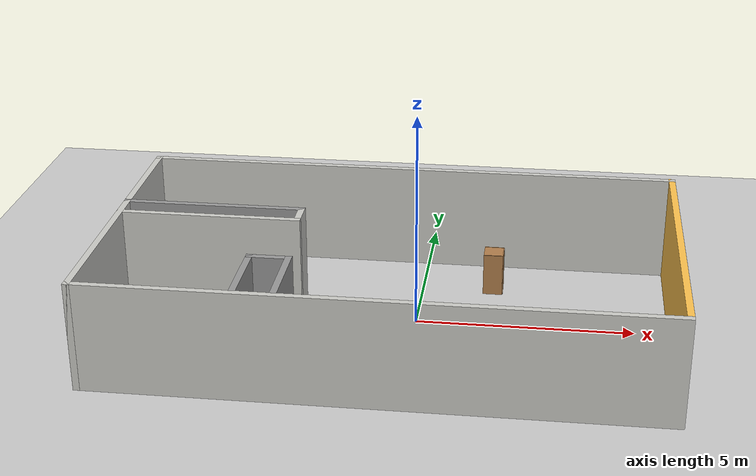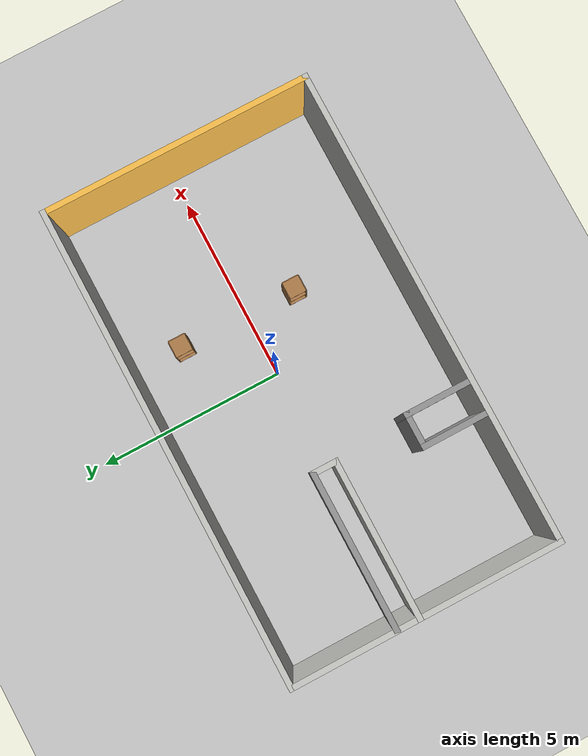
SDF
<sdf version="1.6">
 <world name="default">
  <light name="sun" type="directional">
   <pose>0 0 10 0 -0 0</pose>
   <diffuse>0.8 0.8 0.8 1</diffuse>
   <specular>0.2 0.2 0.2 1</specular>
   <attenuation>
    <range>1000</range>
    <constant>0.9</constant>
    <linear>0.01</linear>
    <quadratic>0.001</quadratic>
   </attenuation>
   <direction>-0.5 0.1 -0.9</direction>
  </light>
  <model name="ground_plane">
   <static>1</static>
   <link name="link">
    <collision name="collision">
     <geometry><plane><normal>0 0 1</normal><size>100 100</size></plane></geometry>
     <surface>
      <contact><collide_bitmask>65535</collide_bitmask></contact>
      <friction><ode><mu>100</mu><mu2>50</mu2></ode></friction>
     </surface>
    </collision>
    <visual name="visual">
     <cast_shadows>0</cast_shadows>
     <geometry><plane><normal>0 0 1</normal><size>100 100</size></plane></geometry>
     <material>
      <script><uri>file://media/materials/scripts/gazebo.material</uri><name>Gazebo/Grey</name></script>
     </material>
    </visual>
   </link>
  </model>
  <gravity>0 0 -9.8</gravity>
  <magnetic_field>6e-06 2.3e-05 -4.2e-05</magnetic_field>
  <atmosphere type="adiabatic"/>
  <physics name="default_physics" default="0" type="ode">
   <max_step_size>0.001</max_step_size>
   <real_time_factor>1</real_time_factor>
   <real_time_update_rate>1000</real_time_update_rate>
  </physics>
  <scene><ambient>0.4 0.4 0.4 1</ambient><background>0.7 0.7 0.7 1</background><shadows>1</shadows></scene>
  <spherical_coordinates>
   <surface_model>EARTH_WGS84</surface_model>
   <latitude_deg>0</latitude_deg>
   <longitude_deg>0</longitude_deg>
   <elevation>0</elevation>
   <heading_deg>0</heading_deg>
  </spherical_coordinates>
  <model name="jannat2_area">
   <pose>-0.489466 -0.350977 0 0 -0 0</pose>
   <link name="Wall_1">
    <collision name="Wall_1_Collision">
     <geometry><box><size>12.75 0.15 2.5</size></box></geometry>
     <pose>0 0 1.25 0 -0 0</pose>
    </collision>
    <visual name="Wall_1_Visual">
     <pose>0 0 1.25 0 -0 0</pose>
     <geometry><box><size>12.75 0.15 2.5</size></box></geometry>
     <material>
      <script><uri>file://media/materials/scripts/gazebo.material</uri><name>Gazebo/CeilingTiled</name></script>
      <ambient>1 0.764706 0.305882 1</ambient>
     </material>
     <meta><layer>0</layer></meta>
    </visual>
    <pose>-0 -3.55 0 0 -0 0</pose>
   </link>
   <link name="Wall_12">
    <collision name="Wall_12_Collision">
     <geometry><box><size>4.25 0.15 2.5</size></box></geometry>
     <pose>0 0 1.25 0 -0 0</pose>
    </collision>
    <visual name="Wall_12_Visual">
     <pose>0 0 1.25 0 -0 0</pose>
     <geometry><box><size>4.25 0.15 2.5</size></box></geometry>
     <material>
      <script><uri>file://media/materials/scripts/gazebo.material</uri><name>Gazebo/Grey</name></script>
      <ambient>1 1 1 1</ambient>
     </material>
     <meta><layer>0</layer></meta>
    </visual>
    <pose>-4.25 0.787536 0 0 -0 0</pose>
   </link>
   <link name="Wall_13">
    <collision name="Wall_13_Collision">
     <geometry><box><size>0.75 0.15 2.5</size></box></geometry>
     <pose>0 0 1.25 0 -0 0</pose>
    </collision>
    <visual name="Wall_13_Visual">
     <pose>0 0 1.25 0 -0 0</pose>
     <geometry><box><size>0.75 0.15 2.5</size></box></geometry>
     <material>
      <script><uri>file://media/materials/scripts/gazebo.material</uri><name>Gazebo/CeilingTiled</name></script>
      <ambient>1 1 1 1</ambient>
     </material>
     <meta><layer>0</layer></meta>
    </visual>
    <pose>-2.2 0.487536 0 0 -0 -1.5708</pose>
   </link>
   <link name="Wall_14">
    <collision name="Wall_14_Collision">
     <geometry><box><size>4.25 0.15 2.5</size></box></geometry>
     <pose>0 0 1.25 0 -0 0</pose>
    </collision>
    <visual name="Wall_14_Visual">
     <pose>0 0 1.25 0 -0 0</pose>
     <geometry><box><size>4.25 0.15 2.5</size></box></geometry>
     <material>
      <script><uri>file://media/materials/scripts/gazebo.material</uri><name>Gazebo/CeilingTiled</name></script>
      <ambient>1 1 1 1</ambient>
     </material>
     <meta><layer>0</layer></meta>
    </visual>
    <pose>-4.25 0.187536 0 0 -0 3.14159</pose>
   </link>
   <link name="Wall_2">
    <collision name="Wall_2_Collision">
     <geometry><box><size>7.25 0.15 2.5</size></box></geometry>
     <pose>0 0 1.25 0 -0 0</pose>
    </collision>
    <visual name="Wall_2_Visual">
     <pose>0 0 1.25 0 -0 0</pose>
     <geometry><box><size>7.25 0.15 2.5</size></box></geometry>
     <material>
      <script><uri>file://media/materials/scripts/gazebo.material</uri><name>Gazebo/Grey</name></script>
      <ambient>1 0.764706 0.305882 1</ambient>
     </material>
     <meta><layer>0</layer></meta>
    </visual>
    <pose>6.3 0 0 0 -0 1.5708</pose>
   </link>
   <link name="Wall_21">
    <collision name="Wall_21_Collision">
     <geometry><box><size>1.75 0.15 2.5</size></box></geometry>
     <pose>0 0 1.25 0 -0 0</pose>
    </collision>
    <visual name="Wall_21_Visual">
     <pose>0 0 1.25 0 -0 0</pose>
     <geometry><box><size>1.75 0.15 2.5</size></box></geometry>
     <material>
      <script><uri>file://media/materials/scripts/gazebo.material</uri><name>Gazebo/Grey</name></script>
      <ambient>1 1 1 1</ambient>
     </material>
     <meta><layer>0</layer></meta>
    </visual>
    <pose>-2.01493 -2.61008 0 0 -0 1.5708</pose>
   </link>
   <link name="Wall_22">
    <collision name="Wall_22_Collision">
     <geometry><box><size>1 0.15 2.5</size></box></geometry>
     <pose>0 0 1.25 0 -0 0</pose>
    </collision>
    <visual name="Wall_22_Visual">
     <pose>0 0 1.25 0 -0 0</pose>
     <geometry><box><size>1 0.15 2.5</size></box></geometry>
     <material>
      <script><uri>file://media/materials/scripts/gazebo.material</uri><name>Gazebo/Grey</name></script>
      <ambient>1 1 1 1</ambient>
     </material>
     <meta><layer>0</layer></meta>
    </visual>
    <pose>-2.43994 -1.81008 0 0 -0 3.14159</pose>
   </link>
   <link name="Wall_23">
    <collision name="Wall_23_Collision">
     <geometry><box><size>1.75 0.15 2.5</size></box></geometry>
     <pose>0 0 1.25 0 -0 0</pose>
    </collision>
    <visual name="Wall_23_Visual">
     <pose>0 0 1.25 0 -0 0</pose>
     <geometry><box><size>1.75 0.15 2.5</size></box></geometry>
     <material>
      <script><uri>file://media/materials/scripts/gazebo.material</uri><name>Gazebo/Grey</name></script>
      <ambient>1 1 1 1</ambient>
     </material>
     <meta><layer>0</layer></meta>
    </visual>
    <pose>-2.86494 -2.61008 0 0 -0 -1.5708</pose>
   </link>
   <link name="Wall_3">
    <collision name="Wall_3_Collision">
     <geometry><box><size>12.75 0.15 2.5</size></box></geometry>
     <pose>0 0 1.25 0 -0 0</pose>
    </collision>
    <visual name="Wall_3_Visual">
     <pose>0 0 1.25 0 -0 0</pose>
     <geometry><box><size>12.75 0.15 2.5</size></box></geometry>
     <material>
      <script><uri>file://media/materials/scripts/gazebo.material</uri><name>Gazebo/CeilingTiled</name></script>
      <ambient>1 0.764706 0.305882 1</ambient>
     </material>
     <meta><layer>0</layer></meta>
    </visual>
    <pose>-0 3.55 0 0 -0 3.14159</pose>
   </link>
   <link name="Wall_4">
    <collision name="Wall_4_Collision">
     <geometry><box><size>7.25 0.15 2.5</size></box></geometry>
     <pose>0 0 1.25 0 -0 0</pose>
    </collision>
    <visual name="Wall_4_Visual">
     <pose>0 0 1.25 0 -0 0</pose>
     <geometry><box><size>7.25 0.15 2.5</size></box></geometry>
     <material>
      <script><uri>file://media/materials/scripts/gazebo.material</uri><name>Gazebo/CeilingTiled</name></script>
      <ambient>1 0.764706 0.305882 1</ambient>
     </material>
     <meta><layer>0</layer></meta>
    </visual>
    <pose>-6.3 0 0 0 -0 -1.5708</pose>
   </link>
   <static>1</static>
  </model>
  <model name="cabinet">
   <static>1</static>
   <link name="cabinet_bottom_plate">
    <inertial>
     <pose>0 0 -1 0 -0 0</pose>
     <inertia><ixx>2.05</ixx><ixy>0</ixy><ixz>0</ixz><iyy>2.05</iyy><iyz>0</iyz><izz>2.05</izz></inertia>
     <mass>25</mass>
    </inertial>
    <collision name="cabinet_bottom_plate_geom">
     <pose>0 0 0.01 0 -0 0</pose>
     <geometry><box><size>0.45 0.45 0.02</size></box></geometry>
    </collision>
    <visual name="cabinet_bottom_plate_geom_visual">
     <pose>0 0 0.01 0 -0 0</pose>
     <geometry><box><size>0.45 0.45 0.02</size></box></geometry>
     <material>
      <script><uri>file://media/materials/scripts/gazebo.material</uri><name>Gazebo/Wood</name></script>
     </material>
    </visual>
    <collision name="cabinet_bottom_plate_geom_cabinet_back_plate">
     <pose>0.235 0 0.51 0 -0 0</pose>
     <geometry><box><size>0.02 0.45 1.02</size></box></geometry>
    </collision>
    <visual name="cabinet_bottom_plate_geom_cabinet_back_plate_visual">
     <pose>0.235 0 0.51 0 -0 0</pose>
     <geometry><box><size>0.02 0.45 1.02</size></box></geometry>
     <material>
      <script><uri>file://media/materials/scripts/gazebo.material</uri><name>Gazebo/Wood</name></script>
     </material>
    </visual>
    <collision name="cabinet_bottom_plate_geom_cabinet_left_plate">
     <pose>0 0.235 0.51 0 -0 0</pose>
     <geometry><box><size>0.45 0.02 1.02</size></box></geometry>
    </collision>
    <visual name="cabinet_bottom_plate_geom_cabinet_left_plate_visual">
     <pose>0 0.235 0.51 0 -0 0</pose>
     <geometry><box><size>0.45 0.02 1.02</size></box></geometry>
     <material>
      <script><uri>file://media/materials/scripts/gazebo.material</uri><name>Gazebo/Wood</name></script>
     </material>
    </visual>
    <collision name="cabinet_bottom_plate_geom_cabinet_middle_plate">
     <pose>0 0 0.51 0 -0 0</pose>
     <geometry><box><size>0.45 0.45 0.02</size></box></geometry>
    </collision>
    <visual name="cabinet_bottom_plate_geom_cabinet_middle_plate_visual">
     <pose>0 0 0.51 0 -0 0</pose>
     <geometry><box><size>0.45 0.45 0.02</size></box></geometry>
     <material>
      <script><uri>file://media/materials/scripts/gazebo.material</uri><name>Gazebo/Wood</name></script>
     </material>
    </visual>
    <collision name="cabinet_bottom_plate_geom_cabinet_right_plate">
     <pose>0 -0.235 0.51 0 -0 0</pose>
     <geometry><box><size>0.45 0.02 1.02</size></box></geometry>
    </collision>
    <visual name="cabinet_bottom_plate_geom_cabinet_right_plate_visual">
     <pose>0 -0.235 0.51 0 -0 0</pose>
     <geometry><box><size>0.45 0.02 1.02</size></box></geometry>
     <material>
      <script><uri>file://media/materials/scripts/gazebo.material</uri><name>Gazebo/Wood</name></script>
     </material>
    </visual>
    <collision name="cabinet_bottom_plate_geom_cabinet_top_plate">
     <pose>0 0 1.01 0 -0 0</pose>
     <geometry><box><size>0.45 0.45 0.02</size></box></geometry>
    </collision>
    <visual name="cabinet_bottom_plate_geom_cabinet_top_plate_visual">
     <pose>0 0 1.01 0 -0 0</pose>
     <geometry><box><size>0.45 0.45 0.02</size></box></geometry>
     <material>
      <script><uri>file://media/materials/scripts/gazebo.material</uri><name>Gazebo/Wood</name></script>
     </material>
    </visual>
   </link>
   <pose>1.66921 1.83813 0 0 -0 0</pose>
  </model>
  <model name="cabinet_0">
   <static>1</static>
   <link name="cabinet_bottom_plate">
    <inertial>
     <pose>0 0 -1 0 -0 0</pose>
     <inertia><ixx>2.05</ixx><ixy>0</ixy><ixz>0</ixz><iyy>2.05</iyy><iyz>0</iyz><izz>2.05</izz></inertia>
     <mass>25</mass>
    </inertial>
    <collision name="cabinet_bottom_plate_geom">
     <pose>0 0 0.01 0 -0 0</pose>
     <geometry><box><size>0.45 0.45 0.02</size></box></geometry>
    </collision>
    <visual name="cabinet_bottom_plate_geom_visual">
     <pose>0 0 0.01 0 -0 0</pose>
     <geometry><box><size>0.45 0.45 0.02</size></box></geometry>
     <material>
      <script><uri>file://media/materials/scripts/gazebo.material</uri><name>Gazebo/Wood</name></script>
     </material>
    </visual>
    <collision name="cabinet_bottom_plate_geom_cabinet_back_plate">
     <pose>0.235 0 0.51 0 -0 0</pose>
     <geometry><box><size>0.02 0.45 1.02</size></box></geometry>
    </collision>
    <visual name="cabinet_bottom_plate_geom_cabinet_back_plate_visual">
     <pose>0.235 0 0.51 0 -0 0</pose>
     <geometry><box><size>0.02 0.45 1.02</size></box></geometry>
     <material>
      <script><uri>file://media/materials/scripts/gazebo.material</uri><name>Gazebo/Wood</name></script>
     </material>
    </visual>
    <collision name="cabinet_bottom_plate_geom_cabinet_left_plate">
     <pose>0 0.235 0.51 0 -0 0</pose>
     <geometry><box><size>0.45 0.02 1.02</size></box></geometry>
    </collision>
    <visual name="cabinet_bottom_plate_geom_cabinet_left_plate_visual">
     <pose>0 0.235 0.51 0 -0 0</pose>
     <geometry><box><size>0.45 0.02 1.02</size></box></geometry>
     <material>
      <script><uri>file://media/materials/scripts/gazebo.material</uri><name>Gazebo/Wood</name></script>
     </material>
    </visual>
    <collision name="cabinet_bottom_plate_geom_cabinet_middle_plate">
     <pose>0 0 0.51 0 -0 0</pose>
     <geometry><box><size>0.45 0.45 0.02</size></box></geometry>
    </collision>
    <visual name="cabinet_bottom_plate_geom_cabinet_middle_plate_visual">
     <pose>0 0 0.51 0 -0 0</pose>
     <geometry><box><size>0.45 0.45 0.02</size></box></geometry>
     <material>
      <script><uri>file://media/materials/scripts/gazebo.material</uri><name>Gazebo/Wood</name></script>
     </material>
    </visual>
    <collision name="cabinet_bottom_plate_geom_cabinet_right_plate">
     <pose>0 -0.235 0.51 0 -0 0</pose>
     <geometry><box><size>0.45 0.02 1.02</size></box></geometry>
    </collision>
    <visual name="cabinet_bottom_plate_geom_cabinet_right_plate_visual">
     <pose>0 -0.235 0.51 0 -0 0</pose>
     <geometry><box><size>0.45 0.02 1.02</size></box></geometry>
     <material>
      <script><uri>file://media/materials/scripts/gazebo.material</uri><name>Gazebo/Wood</name></script>
     </material>
    </visual>
    <collision name="cabinet_bottom_plate_geom_cabinet_top_plate">
     <pose>0 0 1.01 0 -0 0</pose>
     <geometry><box><size>0.45 0.45 0.02</size></box></geometry>
    </collision>
    <visual name="cabinet_bottom_plate_geom_cabinet_top_plate_visual">
     <pose>0 0 1.01 0 -0 0</pose>
     <geometry><box><size>0.45 0.45 0.02</size></box></geometry>
     <material>
      <script><uri>file://media/materials/scripts/gazebo.material</uri><name>Gazebo/Wood</name></script>
     </material>
    </visual>
   </link>
   <pose>1.63971 -1.35988 0 0 -0 0</pose>
  </model>
 </world>
</sdf>
